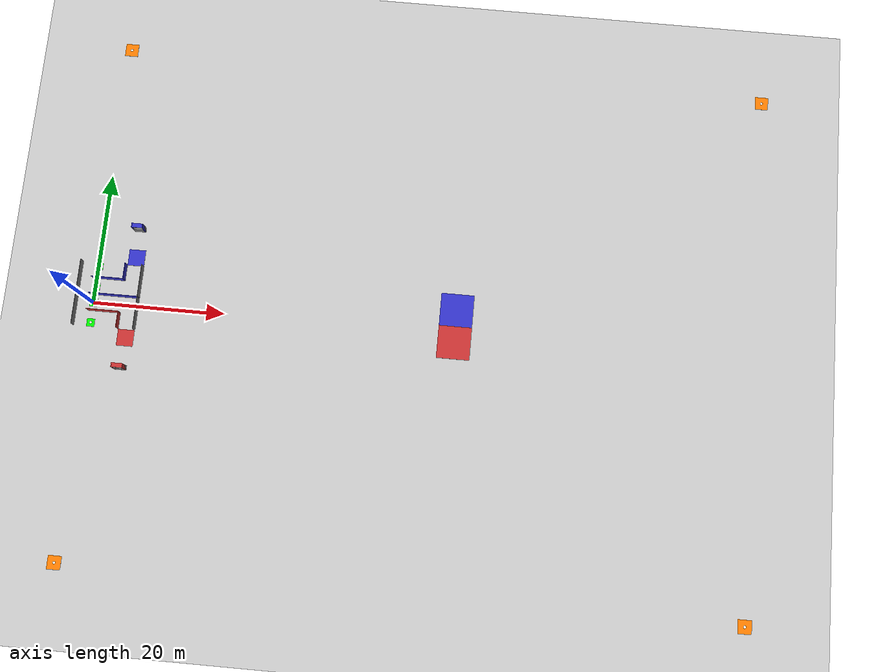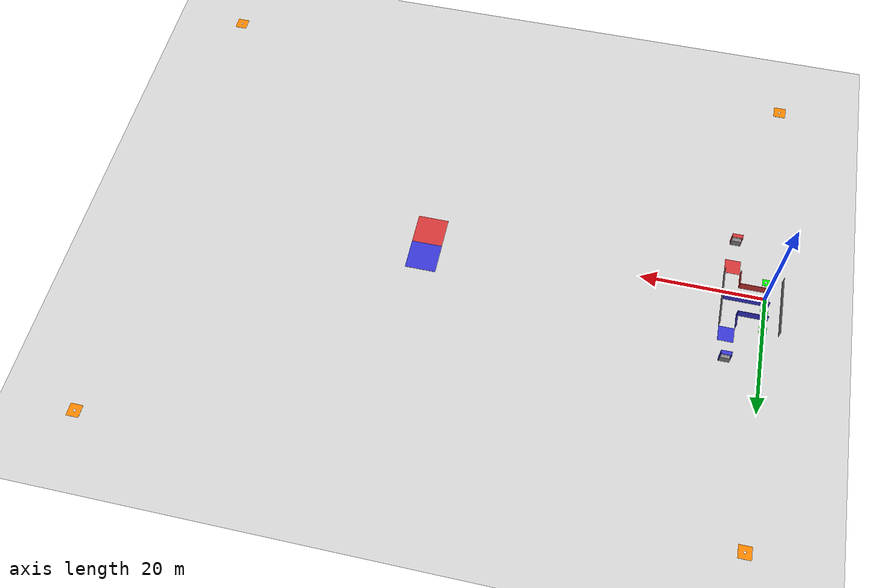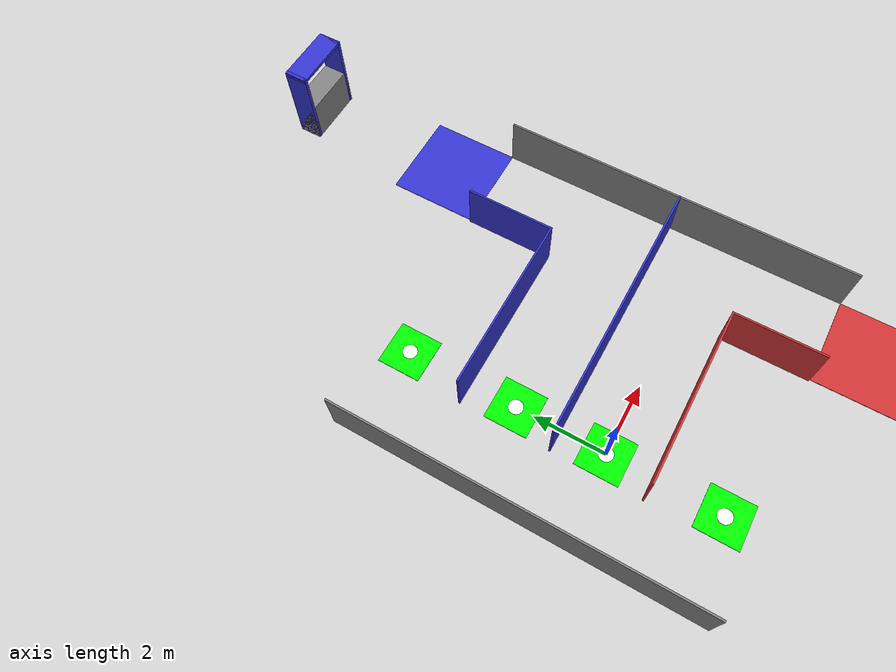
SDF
<sdf version="1.6">
 <world name="default">
  <physics type="ode">
   <ode>
    <solver><type>quick</type><iters>100</iters><sor>1.0</sor></solver>
    <constraints>
     <cfm>0.0</cfm>
     <erp>0.2</erp>
     <contact_max_correcting_vel>0.1</contact_max_correcting_vel>
     <contact_surface_layer>0.0</contact_surface_layer>
    </constraints>
   </ode>
   <real_time_update_rate>-1</real_time_update_rate>
  </physics>
  <gravity>0 0 -9.8</gravity>
  <include><uri>model://sun</uri></include>
  <model name="ground_plane">
   <static>true</static>
   <link name="link">
    <collision name="collision">
     <geometry><plane><normal>0 0 1</normal><size>5000 5000</size></plane></geometry>
     <surface><friction><ode><mu>100</mu><mu2>50</mu2></ode></friction></surface>
    </collision>
    <visual name="runway">
     <pose>0 0 0.005 0 0 0</pose>
     <cast_shadows>false</cast_shadows>
     <geometry><plane><normal>0 0 1</normal><size>1829 45</size></plane></geometry>
     <material>
      <script><uri>file://media/materials/scripts/gazebo.material</uri><name>Gazebo/Runway</name></script>
     </material>
    </visual>
    <visual name="grass">
     <pose>0 0 -0.1 0 0 0</pose>
     <cast_shadows>false</cast_shadows>
     <geometry><plane><normal>0 0 1</normal><size>5000 5000</size></plane></geometry>
     <material>
      <script><uri>file://media/materials/scripts/gazebo.material</uri><name>Gazebo/Grass</name></script>
     </material>
    </visual>
   </link>
  </model>
  <model name="TembokKiri">
   <static>true</static>
   <link name="link">
    <collision name="collision"><geometry><box><size>4.95 0.05 1.5</size></box></geometry></collision>
    <visual name="visual">
     <geometry><box><size>4.9 0.05 1.5</size></box></geometry>
     <material><ambient>0.2 0.2 0.8 1</ambient></material>
    </visual>
   </link>
   <pose>1.85 3.80 0.75 0 0 0</pose>
  </model>
  <model name="Tembok_Kiri">
   <static>true</static>
   <link name="link">
    <collision name="collision"><geometry><box><size>0.05 2.48 1.5</size></box></geometry></collision>
    <visual name="visual">
     <geometry><box><size>0.05 2.48 1.5</size></box></geometry>
     <material><ambient>0.2 0.2 0.8 1</ambient></material>
    </visual>
   </link>
   <pose>4.275 5.015 0.75 0 0 0</pose>
  </model>
  <model name="TembokKanan">
   <static>true</static>
   <link name="link">
    <collision name="collision"><geometry><box><size>4.95 0.05 1.5</size></box></geometry></collision>
    <visual name="visual">
     <geometry><box><size>4.9 0.05 1.5</size></box></geometry>
     <material><ambient>0.8 0.2 0.2 1</ambient></material>
    </visual>
   </link>
   <pose>1.85 -1.25 0.75 0 0 0</pose>
  </model>
  <model name="Tembok_Kanan">
   <static>true</static>
   <link name="link">
    <collision name="collision"><geometry><box><size>0.05 2.48 1.5</size></box></geometry></collision>
    <visual name="visual">
     <geometry><box><size>0.05 2.48 1.5</size></box></geometry>
     <material><ambient>0.8 0.2 0.2 1</ambient></material>
    </visual>
   </link>
   <pose>4.275 -2.465 0.75 0 0 0</pose>
  </model>
  <model name="belakang_tembok">
   <static>true</static>
   <link name="link">
    <collision name="collision"><geometry><box><size>0.05 10 1.5</size></box></geometry></collision>
    <visual name="visual">
     <geometry><box><size>0.05 10 1.5</size></box></geometry>
     <material><ambient>0.5 0.5 0.5 1</ambient></material>
    </visual>
   </link>
   <pose>-2.5 1.28 0.75 0 0 0</pose>
  </model>
  <model name="TembokTengah">
   <static>true</static>
   <link name="link">
    <collision name="collision"><geometry><box><size>7.45 0.05 1.5</size></box></geometry></collision>
    <visual name="visual">
     <geometry><box><size>7.45 0.05 1.5</size></box></geometry>
     <material><ambient>0.2 0.2 0.8 1</ambient></material>
    </visual>
   </link>
   <pose>3.12 1.25 0.75 0 0 0</pose>
  </model>
  <model name="Tembok_T">
   <static>true</static>
   <link name="link">
    <collision name="collision"><geometry><box><size>0.05 10 1.5</size></box></geometry></collision>
    <visual name="visual">
     <geometry><box><size>0.05 10 1.5</size></box></geometry>
     <material><ambient>0.5 0.5 0.5 1</ambient></material>
    </visual>
   </link>
   <pose>6.82 1.28 0.75 0 0 0</pose>
  </model>
  <model name="Gatekiri">
   <static>true</static>
   <link name="link">
    <collision name="collision"><geometry><box><size>1.7 0.66 1.2</size></box></geometry></collision>
    <visual name="visual">
     <geometry><box><size>1.7 0.66 1.2</size></box></geometry>
     <material><ambient>0.5 0.5 0.5 1</ambient></material>
    </visual>
   </link>
   <pose>5.525 12 0.6 0 0 0</pose>
  </model>
  <model name="tiangGateki">
   <static>true</static>
   <link name="link">
    <collision name="collision"><geometry><box><size>0.1 0.66 2.4</size></box></geometry></collision>
    <visual name="visual">
     <geometry><box><size>0.1 0.66 2.4</size></box></geometry>
     <material><ambient>0.2 0.2 0.8 1</ambient></material>
    </visual>
   </link>
   <pose>6.325 12 1.2 0 0 0</pose>
  </model>
  <model name="tiangGateki_">
   <static>true</static>
   <link name="link">
    <collision name="collision"><geometry><box><size>0.1 0.66 2.4</size></box></geometry></collision>
    <visual name="visual">
     <geometry><box><size>0.1 0.66 2.4</size></box></geometry>
     <material><ambient>0.2 0.2 0.8 1</ambient></material>
    </visual>
   </link>
   <pose>4.725 12 1.2 0 0 0</pose>
  </model>
  <model name="tiangGateki_atas">
   <static>true</static>
   <link name="link">
    <collision name="collision"><geometry><box><size>1.7 0.66 0.1</size></box></geometry></collision>
    <visual name="visual">
     <geometry><box><size>1.7 0.66 0.1</size></box></geometry>
     <material><ambient>0.2 0.2 0.8 1</ambient></material>
    </visual>
   </link>
   <pose>5.525 12 2.35 0 0 0</pose>
  </model>
  <model name="Gatekanan">
   <static>true</static>
   <link name="link">
    <collision name="collision"><geometry><box><size>1.7 0.66 1.2</size></box></geometry></collision>
    <visual name="visual">
     <geometry><box><size>1.7 0.66 1.2</size></box></geometry>
     <material><ambient>0.5 0.5 0.5 1</ambient></material>
    </visual>
   </link>
   <pose>5.525 -9.53 0.6 0 0 0</pose>
  </model>
  <model name="tiangGateka">
   <static>true</static>
   <link name="link">
    <collision name="collision"><geometry><box><size>0.1 0.66 2.4</size></box></geometry></collision>
    <visual name="visual">
     <geometry><box><size>0.1 0.66 2.4</size></box></geometry>
     <material><ambient>0.8 0.2 0.2 1</ambient></material>
    </visual>
   </link>
   <pose>6.325 -9.53 1.2 0 0 0</pose>
  </model>
  <model name="tiangGateka_">
   <static>true</static>
   <link name="link">
    <collision name="collision"><geometry><box><size>0.1 0.66 2.4</size></box></geometry></collision>
    <visual name="visual">
     <geometry><box><size>0.1 0.66 2.4</size></box></geometry>
     <material><ambient>0.8 0.2 0.2 1</ambient></material>
    </visual>
   </link>
   <pose>4.725 -9.53 1.2 0 0 0</pose>
  </model>
  <model name="tiangGatekanan_atas">
   <static>true</static>
   <link name="link">
    <collision name="collision"><geometry><box><size>1.7 0.66 0.1</size></box></geometry></collision>
    <visual name="visual">
     <geometry><box><size>1.7 0.66 0.1</size></box></geometry>
     <material><ambient>0.8 0.2 0.2 1</ambient></material>
    </visual>
   </link>
   <pose>5.525 -9.53 2.35 0 0 0</pose>
  </model>
  <model name="landka_box">
   <static>true</static>
   <link name="link">
    <collision name="collision"><geometry><box><size>1.2 1.2 0.02</size></box></geometry></collision>
    <visual name="visual">
     <geometry><box><size>1.2 1.2 0.02</size></box></geometry>
     <material><ambient>0 1 0 1</ambient><diffuse>0 1 0 1</diffuse></material>
    </visual>
   </link>
  </model>
  <model name="landka_circle">
   <static>true</static>
   <link name="circle_link">
    <visual name="circle_visual">
     <geometry><cylinder><radius>0.2</radius><length>0.025</length></cylinder></geometry>
     <material><ambient>1 1 1 1</ambient><diffuse>1 1 1 1</diffuse><specular>0.5 0.5 0.5 1</specular></material>
    </visual>
    <collision name="circle_collision">
     <geometry><cylinder><radius>0.2</radius><length>0.025</length></cylinder></geometry>
    </collision>
   </link>
  </model>
  <model name="landki_box">
   <static>true</static>
   <pose>0 2.5 0 0 0 0</pose>
   <link name="link">
    <collision name="collision"><geometry><box><size>1.2 1.2 0.02</size></box></geometry></collision>
    <visual name="visual">
     <geometry><box><size>1.2 1.2 0.02</size></box></geometry>
     <material><ambient>0 1 0 1</ambient><diffuse>0 1 0 1</diffuse></material>
    </visual>
   </link>
  </model>
  <model name="landki_circle">
   <static>true</static>
   <link name="circle_link">
    <visual name="circle_visual">
     <geometry><cylinder><radius>0.2</radius><length>0.025</length></cylinder></geometry>
     <material><ambient>1 1 1 1</ambient><diffuse>1 1 1 1</diffuse><specular>0.5 0.5 0.5 1</specular></material>
    </visual>
    <collision name="circle_collision">
     <geometry><cylinder><radius>0.2</radius><length>0.025</length></cylinder></geometry>
    </collision>
   </link>
   <pose>0 2.5 0 0 0 0</pose>
  </model>
  <model name="serialka_box">
   <static>true</static>
   <pose>0 -3.105 0 0 0 0</pose>
   <link name="link">
    <collision name="collision"><geometry><box><size>1.2 1.2 0.02</size></box></geometry></collision>
    <visual name="visual">
     <geometry><box><size>1.2 1.2 0.02</size></box></geometry>
     <material><ambient>0 1 0 1</ambient><diffuse>0 1 0 1</diffuse></material>
    </visual>
   </link>
  </model>
  <model name="serialka_circle">
   <static>true</static>
   <link name="circle_link">
    <visual name="circle_visual">
     <geometry><cylinder><radius>0.2</radius><length>0.025</length></cylinder></geometry>
     <material><ambient>1 1 1 1</ambient><diffuse>1 1 1 1</diffuse><specular>0.5 0.5 0.5 1</specular></material>
    </visual>
    <collision name="circle_collision">
     <geometry><cylinder><radius>0.2</radius><length>0.025</length></cylinder></geometry>
    </collision>
   </link>
   <pose>0 -3.105 0 0 0 0</pose>
  </model>
  <model name="serialki_box">
   <static>true</static>
   <pose>0 5.62 0 0 0 0</pose>
   <link name="link">
    <collision name="collision"><geometry><box><size>1.2 1.2 0.02</size></box></geometry></collision>
    <visual name="visual">
     <geometry><box><size>1.2 1.2 0.02</size></box></geometry>
     <material><ambient>0 1 0 1</ambient><diffuse>0 1 0 1</diffuse></material>
    </visual>
   </link>
  </model>
  <model name="serialki_circle">
   <static>true</static>
   <link name="circle_link">
    <visual name="circle_visual">
     <geometry><cylinder><radius>0.2</radius><length>0.025</length></cylinder></geometry>
     <material><ambient>1 1 1 1</ambient><diffuse>1 1 1 1</diffuse><specular>0.5 0.5 0.5 1</specular></material>
    </visual>
    <collision name="circle_collision">
     <geometry><cylinder><radius>0.2</radius><length>0.025</length></cylinder></geometry>
    </collision>
   </link>
   <pose>0 5.62 0 0 0 0</pose>
  </model>
  <model name="dropka_box">
   <static>true</static>
   <pose>5.55 -4.965 0 0 0 0</pose>
   <link name="link">
    <collision name="collision"><geometry><box><size>2.5 2.5 0.02</size></box></geometry></collision>
    <visual name="visual">
     <geometry><box><size>2.5 2.5 0.02</size></box></geometry>
     <material><ambient>0.8 0.2 0.2 1</ambient></material>
    </visual>
   </link>
  </model>
  <model name="dropki_box">
   <static>true</static>
   <pose>5.55 7.515 0 0 0 0</pose>
   <link name="link">
    <collision name="collision"><geometry><box><size>2.5 2.5 0.02</size></box></geometry></collision>
    <visual name="visual">
     <geometry><box><size>2.5 2.5 0.02</size></box></geometry>
     <material><ambient>0.2 0.2 0.8 1</ambient></material>
    </visual>
   </link>
  </model>
  <model name="dropoutka1_box">
   <static>true</static>
   <pose>0 -38.75 0 0 0 0</pose>
   <link name="link">
    <collision name="collision"><geometry><box><size>2 2 0.02</size></box></geometry></collision>
    <visual name="visual">
     <geometry><box><size>2 2 0.02</size></box></geometry>
     <material><ambient>1 0.5 0 1</ambient><diffuse>1 0.5 0 1</diffuse></material>
    </visual>
   </link>
  </model>
  <model name="dropoutka1_circle">
   <static>true</static>
   <link name="circle_link">
    <visual name="circle_visual">
     <geometry><cylinder><radius>0.2</radius><length>0.025</length></cylinder></geometry>
     <material><ambient>1 1 1 1</ambient><diffuse>1 1 1 1</diffuse><specular>0.5 0.5 0.5 1</specular></material>
    </visual>
    <collision name="circle_collision">
     <geometry><cylinder><radius>0.2</radius><length>0.025</length></cylinder></geometry>
    </collision>
   </link>
   <pose>0 -38.75 0 0 0 0</pose>
  </model>
  <model name="dropoutki1_box">
   <static>true</static>
   <pose>0 41.25 0 0 0 0</pose>
   <link name="link">
    <collision name="collision"><geometry><box><size>2 2 0.02</size></box></geometry></collision>
    <visual name="visual">
     <geometry><box><size>2 2 0.02</size></box></geometry>
     <material><ambient>1 0.5 0 1</ambient><diffuse>1 0.5 0 1</diffuse></material>
    </visual>
   </link>
  </model>
  <model name="dropoutki1_circle">
   <static>true</static>
   <link name="circle_link">
    <visual name="circle_visual">
     <geometry><cylinder><radius>0.2</radius><length>0.025</length></cylinder></geometry>
     <material><ambient>1 1 1 1</ambient><diffuse>1 1 1 1</diffuse><specular>0.5 0.5 0.5 1</specular></material>
    </visual>
    <collision name="circle_collision">
     <geometry><cylinder><radius>0.2</radius><length>0.025</length></cylinder></geometry>
    </collision>
   </link>
   <pose>0 41.25 0 0 0 0</pose>
  </model>
  <model name="dropoutka2_box">
   <static>true</static>
   <pose>100 -38.75 0 0 0 0</pose>
   <link name="link">
    <collision name="collision"><geometry><box><size>2 2 0.02</size></box></geometry></collision>
    <visual name="visual">
     <geometry><box><size>2 2 0.02</size></box></geometry>
     <material><ambient>1 0.5 0 1</ambient><diffuse>1 0.5 0 1</diffuse></material>
    </visual>
   </link>
  </model>
  <model name="dropoutka2_circle">
   <static>true</static>
   <link name="circle_link">
    <visual name="circle_visual">
     <geometry><cylinder><radius>0.2</radius><length>0.025</length></cylinder></geometry>
     <material><ambient>1 1 1 1</ambient><diffuse>1 1 1 1</diffuse><specular>0.5 0.5 0.5 1</specular></material>
    </visual>
    <collision name="circle_collision">
     <geometry><cylinder><radius>0.2</radius><length>0.025</length></cylinder></geometry>
    </collision>
   </link>
   <pose>100 -38.75 0 0 0 0</pose>
  </model>
  <model name="dropoutki2_box">
   <static>true</static>
   <pose>100 41.25 0 0 0 0</pose>
   <link name="link">
    <collision name="collision"><geometry><box><size>2 2 0.02</size></box></geometry></collision>
    <visual name="visual">
     <geometry><box><size>2 2 0.02</size></box></geometry>
     <material><ambient>1 0.5 0 1</ambient><diffuse>1 0.5 0 1</diffuse></material>
    </visual>
   </link>
  </model>
  <model name="dropoutki2_circle">
   <static>true</static>
   <link name="circle_link">
    <visual name="circle_visual">
     <geometry><cylinder><radius>0.2</radius><length>0.025</length></cylinder></geometry>
     <material><ambient>1 1 1 1</ambient><diffuse>1 1 1 1</diffuse><specular>0.5 0.5 0.5 1</specular></material>
    </visual>
    <collision name="circle_collision">
     <geometry><cylinder><radius>0.2</radius><length>0.025</length></cylinder></geometry>
    </collision>
   </link>
   <pose>100 41.25 0 0 0 0</pose>
  </model>
  <model name="preslandka_box">
   <static>true</static>
   <pose>55 -1.25 0 0 0 0</pose>
   <link name="link">
    <collision name="collision"><geometry><box><size>5 5 0.02</size></box></geometry></collision>
    <visual name="visual">
     <geometry><box><size>5 5 0.02</size></box></geometry>
     <material><ambient>0.8 0.2 0.2 1</ambient></material>
    </visual>
   </link>
  </model>
  <model name="preslandki_box">
   <static>true</static>
   <pose>55 3.75 0 0 0 0</pose>
   <link name="link">
    <collision name="collision"><geometry><box><size>5 5 0.02</size></box></geometry></collision>
    <visual name="visual">
     <geometry><box><size>5 5 0.02</size></box></geometry>
     <material><ambient>0.2 0.2 0.8 1</ambient></material>
    </visual>
   </link>
  </model>
  <model name="rplidar">
   <static>true</static>
   <link name="rplidar">
    <plugin name="gazebo_ros_laser" filename="libgazebo_ros_laser.so">
     <robotNamespace>/rplidar</robotNamespace>
     <topicName>scan</topicName>
     <frameName>laser</frameName>
    </plugin>
   </link>
  </model>
  <model name="tflidar">
   <static>true</static>
   <link name="rangefinder">
    <plugin name="gazebo_ros_range" filename="libgazebo_ros_range.so">
     <gaussianNoise>0.005</gaussianNoise>
     <alwaysOn>true</alwaysOn>
     <updateRate>50</updateRate>
     <robotNamespace>/rangefinder</robotNamespace>
     <topicName>/mavros/rangefinder/rangefinder</topicName>
     <rangefinderName>rangefinder_sensor</rangefinderName>
     <frameName>rangefinder</frameName>
     <radiation>INFRARED</radiation>
     <fov>0.1745</fov>
    </plugin>
   </link>
  </model>
 </world>
</sdf>
